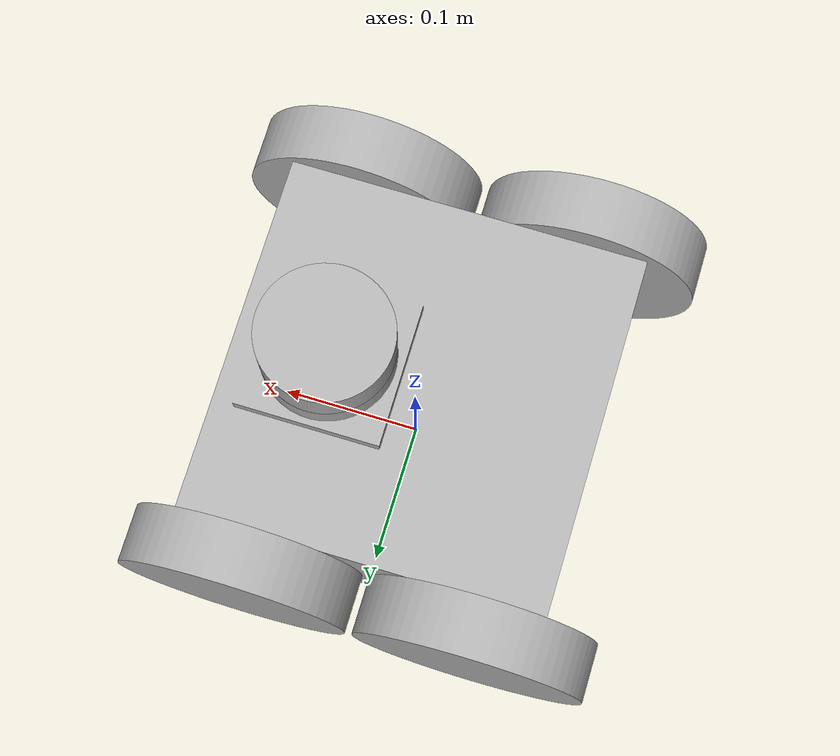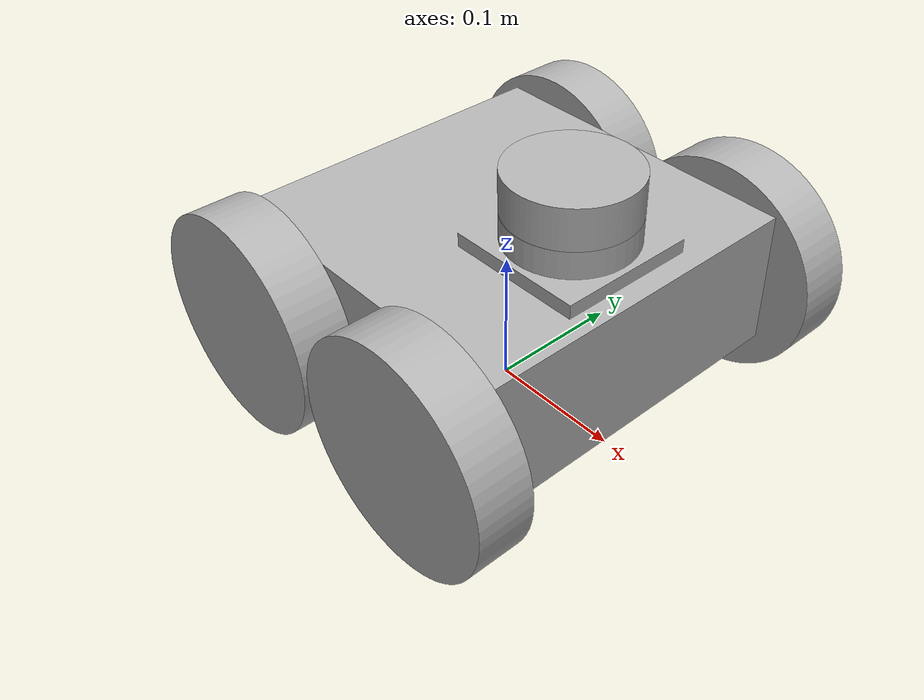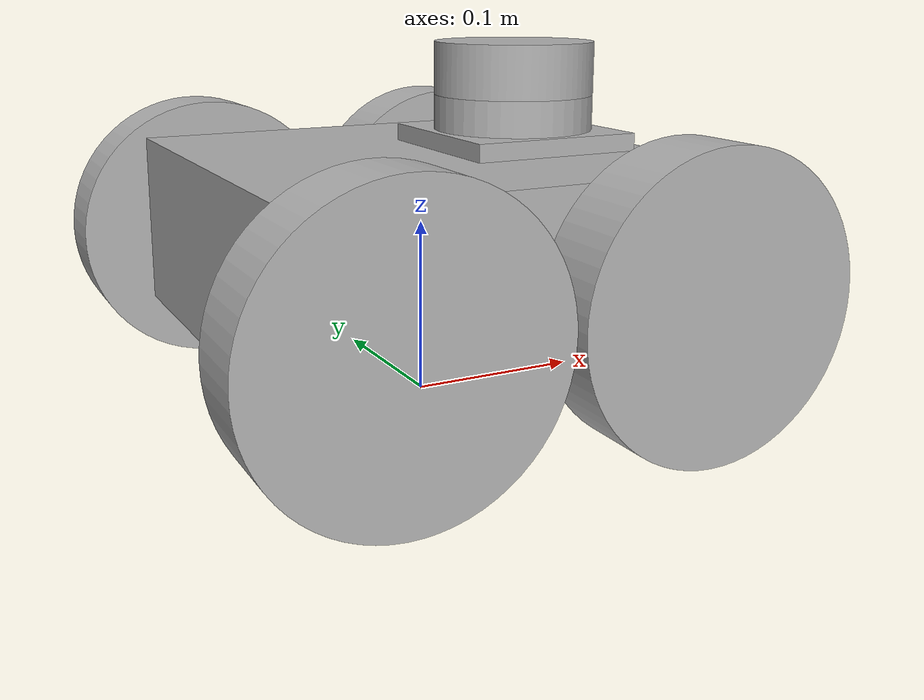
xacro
<?xml version="1.0" ?>
<robot name="aiitra_urdf" xmlns:xacro="http://www.ros.org/wiki/xacro">

<xacro:include filename="$(find aiitra_urdf_description)/urdf/materials.xacro" />
<xacro:include filename="$(find aiitra_urdf_description)/urdf/aiitra_urdf.trans" />
<xacro:include filename="$(find aiitra_urdf_description)/urdf/aiitra_urdf.gazebo" />
<link name="base_link">
  <inertial>
    <origin rpy="0 0 0" xyz="0.002112184735904084 -2.24558823063699e-17 0.09226027842072686"/>
    <mass value="50.86976008521217"/>
    <inertia ixx="0.30477" ixy="-0.0" ixz="-0.006579" iyy="0.310914" iyz="-0.0" izz="0.519554"/>
  </inertial>
  <visual>
    <origin rpy="0 0 0" xyz="0 0 0"/>
    <geometry>
      <mesh filename="package://aiitra_urdf_description/meshes/base_link.stl" scale="0.001 0.001 0.001"/>
    </geometry>
    <material name="silver"/>
  </visual>
  <collision>
    <origin rpy="0 0 0" xyz="0 0 0"/>
    <geometry>
      <mesh filename="package://aiitra_urdf_description/meshes/base_link.stl" scale="0.001 0.001 0.001"/>
    </geometry>
  </collision>
</link>

<link name="back_right_wheel_1">
  <inertial>
    <origin rpy="0 0 0" xyz="-4.163336342344337e-17 -0.019999999999999962 0.0"/>
    <mass value="0.7479503789666576"/>
    <inertia ixx="0.001296" ixy="0.0" ixz="0.0" iyy="0.002393" iyz="0.0" izz="0.001296"/>
  </inertial>
  <visual>
    <origin rpy="0 0 0" xyz="0.085 0.125 -0.08"/>
    <geometry>
      <mesh filename="package://aiitra_urdf_description/meshes/back_right_wheel_1.stl" scale="0.001 0.001 0.001"/>
    </geometry>
    <material name="silver"/>
  </visual>
  <collision>
    <origin rpy="0 0 0" xyz="0.085 0.125 -0.08"/>
    <geometry>
      <mesh filename="package://aiitra_urdf_description/meshes/back_right_wheel_1.stl" scale="0.001 0.001 0.001"/>
    </geometry>
  </collision>
</link>

<link name="fromt_right_wheel_1">
  <inertial>
    <origin rpy="0 0 0" xyz="5.551115123125783e-17 -0.019999999999999962 0.0"/>
    <mass value="0.7479503789666576"/>
    <inertia ixx="0.001296" ixy="0.0" ixz="0.0" iyy="0.002393" iyz="0.0" izz="0.001296"/>
  </inertial>
  <visual>
    <origin rpy="0 0 0" xyz="-0.08 0.125 -0.08"/>
    <geometry>
      <mesh filename="package://aiitra_urdf_description/meshes/fromt_right_wheel_1.stl" scale="0.001 0.001 0.001"/>
    </geometry>
    <material name="silver"/>
  </visual>
  <collision>
    <origin rpy="0 0 0" xyz="-0.08 0.125 -0.08"/>
    <geometry>
      <mesh filename="package://aiitra_urdf_description/meshes/fromt_right_wheel_1.stl" scale="0.001 0.001 0.001"/>
    </geometry>
  </collision>
</link>

<link name="back_left_wheel_1">
  <inertial>
    <origin rpy="0 0 0" xyz="-2.7755575615628914e-17 0.019999999999999962 0.0"/>
    <mass value="0.7479503789666576"/>
    <inertia ixx="0.001296" ixy="0.0" ixz="0.0" iyy="0.002393" iyz="0.0" izz="0.001296"/>
  </inertial>
  <visual>
    <origin rpy="0 0 0" xyz="0.085 -0.125 -0.08"/>
    <geometry>
      <mesh filename="package://aiitra_urdf_description/meshes/back_left_wheel_1.stl" scale="0.001 0.001 0.001"/>
    </geometry>
    <material name="silver"/>
  </visual>
  <collision>
    <origin rpy="0 0 0" xyz="0.085 -0.125 -0.08"/>
    <geometry>
      <mesh filename="package://aiitra_urdf_description/meshes/back_left_wheel_1.stl" scale="0.001 0.001 0.001"/>
    </geometry>
  </collision>
</link>

<link name="front_left_wheel_1">
  <inertial>
    <origin rpy="0 0 0" xyz="5.551115123125783e-17 0.019999999999999962 0.0"/>
    <mass value="0.7479503789666576"/>
    <inertia ixx="0.001296" ixy="-0.0" ixz="0.0" iyy="0.002393" iyz="0.0" izz="0.001296"/>
  </inertial>
  <visual>
    <origin rpy="0 0 0" xyz="-0.08 -0.125 -0.08"/>
    <geometry>
      <mesh filename="package://aiitra_urdf_description/meshes/front_left_wheel_1.stl" scale="0.001 0.001 0.001"/>
    </geometry>
    <material name="silver"/>
  </visual>
  <collision>
    <origin rpy="0 0 0" xyz="-0.08 -0.125 -0.08"/>
    <geometry>
      <mesh filename="package://aiitra_urdf_description/meshes/front_left_wheel_1.stl" scale="0.001 0.001 0.001"/>
    </geometry>
  </collision>
</link>

<link name="lidar_1">
  <inertial>
    <origin rpy="0 0 0" xyz="1.1682990373046431e-07 5.8025582573425195e-18 0.014999999999999958"/>
    <mass value="1.5380141595052421"/>
    <inertia ixx="0.000915" ixy="0.0" ixz="-0.0" iyy="0.000915" iyz="0.0" izz="0.001599"/>
  </inertial>
  <visual>
    <origin rpy="0 0 0" xyz="-0.059347 -0.0 -0.17"/>
    <geometry>
      <mesh filename="package://aiitra_urdf_description/meshes/lidar_1.stl" scale="0.001 0.001 0.001"/>
    </geometry>
    <material name="silver"/>
  </visual>
  <collision>
    <origin rpy="0 0 0" xyz="-0.059347 -0.0 -0.17"/>
    <geometry>
      <mesh filename="package://aiitra_urdf_description/meshes/lidar_1.stl" scale="0.001 0.001 0.001"/>
    </geometry>
  </collision>
</link>

<joint name="Rev1" type="continuous">
  <origin rpy="0 0 0" xyz="-0.085 -0.125 0.08"/>
  <parent link="base_link"/>
  <child link="back_right_wheel_1"/>
  <axis xyz="0.0 -1.0 0.0"/>
</joint>

<joint name="Rev2" type="continuous">
  <origin rpy="0 0 0" xyz="0.08 -0.125 0.08"/>
  <parent link="base_link"/>
  <child link="fromt_right_wheel_1"/>
  <axis xyz="0.0 -1.0 0.0"/>
</joint>

<joint name="Rev3" type="continuous">
  <origin rpy="0 0 0" xyz="-0.085 0.125 0.08"/>
  <parent link="base_link"/>
  <child link="back_left_wheel_1"/>
  <axis xyz="0.0 1.0 0.0"/>
</joint>

<joint name="Rev4" type="continuous">
  <origin rpy="0 0 0" xyz="0.08 0.125 0.08"/>
  <parent link="base_link"/>
  <child link="front_left_wheel_1"/>
  <axis xyz="0.0 1.0 0.0"/>
</joint>

<joint name="Rigid5" type="fixed">
  <origin rpy="0 0 0" xyz="0.059347 0.0 0.17"/>
  <parent link="base_link"/>
  <child link="lidar_1"/>
</joint>

</robot>

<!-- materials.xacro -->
<robot name="aiitra_urdf" xmlns:xacro="http://www.ros.org/wiki/xacro" >

<material name="silver">
  <color rgba="0.700 0.700 0.700 1.000"/>
</material>

</robot>

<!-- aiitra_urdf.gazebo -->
<robot name="aiitra_urdf" xmlns:xacro="http://www.ros.org/wiki/xacro" >

<xacro:property name="body_color" value="Gazebo/Silver" />

<gazebo>
  <plugin filename="libgazebo_ros_control.so" name="control"/>
</gazebo>
<gazebo reference="base_link">
  <material>${body_color}</material>
  <mu1>0.2</mu1>
  <mu2>0.2</mu2>
  <selfCollide>true</selfCollide>
  <gravity>true</gravity>
</gazebo>

<gazebo reference="back_right_wheel_1">
  <material>${body_color}</material>
  <mu1>0.2</mu1>
  <mu2>0.2</mu2>
  <selfCollide>true</selfCollide>
</gazebo>

<gazebo reference="fromt_right_wheel_1">
  <material>${body_color}</material>
  <mu1>0.2</mu1>
  <mu2>0.2</mu2>
  <selfCollide>true</selfCollide>
</gazebo>

<gazebo reference="back_left_wheel_1">
  <material>${body_color}</material>
  <mu1>0.2</mu1>
  <mu2>0.2</mu2>
  <selfCollide>true</selfCollide>
</gazebo>

<gazebo reference="front_left_wheel_1">
  <material>${body_color}</material>
  <mu1>0.2</mu1>
  <mu2>0.2</mu2>
  <selfCollide>true</selfCollide>
</gazebo>

  <gazebo reference="lidar_1">
    <sensor type="ray" name="head_hokuyo_sensor">
      <pose>0 0 0 0 0 0</pose>
      <visualize>true</visualize>
      <update_rate>40</update_rate>
      <ray>
        <scan>
          <horizontal>
            <samples>25</samples>
            <resolution>1</resolution>
            <min_angle>-1.570796</min_angle>
            <max_angle>1.570796</max_angle>
          </horizontal>
        </scan>
        <range>
          <min>0.10</min>
          <max>0.80</max>
          <resolution>0.01</resolution>
        </range>
        <noise>
          <type>gaussian</type>
          <mean>0.0</mean>
          <stddev>0.01</stddev>
        </noise>
      </ray>
      <plugin name="gazebo_ros_head_hokuyo_controller" filename="libgazebo_ros_laser.so">
        <topicName>scan</topicName>
        <frameName>lidar_1</frameName>
      </plugin>
    </sensor>
  </gazebo>

<gazebo>
  <plugin name="object_controller" filename="libgazebo_ros_planar_move.so">
    <commandTopic>cmd_vel</commandTopic>
    <odometryTopic>odom</odometryTopic>
    <odometryFrame>odom</odometryFrame>
    <odometryRate>20.0</odometryRate>
    <robotBaseFrame>base_footprint</robotBaseFrame>
  </plugin>
</gazebo>

</robot>
